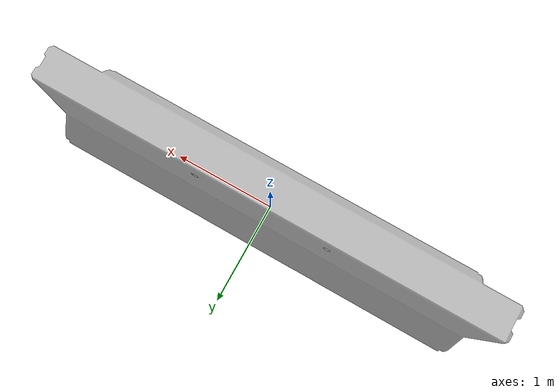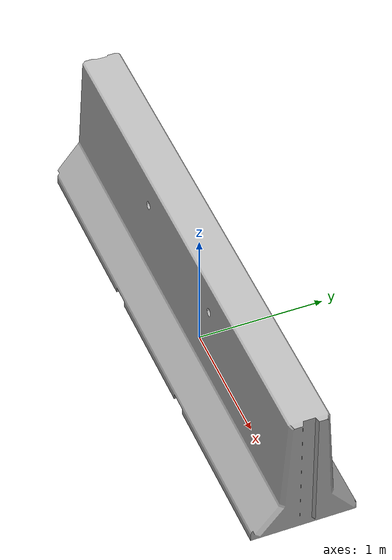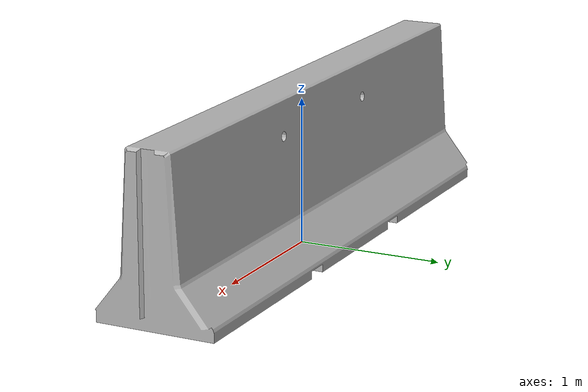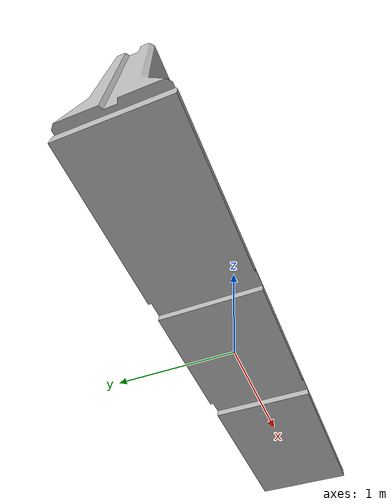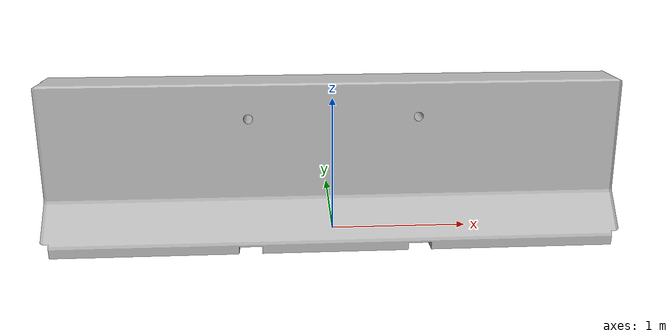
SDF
<?xml version="1.0" ?>
<sdf version="1.4">
  <model name="jersey_barrier">
    <link name="link">
      <inertial>
        <pose>0 0 0.2  0 0 0</pose>
        <!-- Volume ~ 4x1x0.5 = 2 m^3, 2000 kg/m^3 -->
        <mass>4000</mass>
        <!-- approximate as uniform box 4 x 0.5 x 1 m -->
        <inertia>
          <ixx>416.67</ixx>
          <ixy>0.0000</ixy><iyy>5666.7</iyy>
          <ixz>0.0000</ixz><iyz>0.0000</iyz><izz>5416.7</izz>
        </inertia>
      </inertial>
      <visual name="visual">
        <geometry>
          <mesh>
            <uri>model://jersey_barrier/meshes/jersey_barrier.dae</uri>
          </mesh>
        </geometry>
      </visual>

      <collision name="upright">
        <pose>0 0 0.5715 0 0 0</pose>
        <geometry>
          <box>
            <size>4.06542 0.3063 1.143</size>
          </box>
        </geometry>
      </collision>

      <collision name="base">
        <pose>0 0 0.032258 0 0 0</pose>
        <geometry>
          <box>
            <size>4.06542 0.8107 0.064516</size>
          </box>
        </geometry>
      </collision>

      <collision name="base2">
        <pose>0 0 0.1 0 0 0</pose>
        <geometry>
          <box>
            <size>4.06542 0.65 0.1</size>
          </box>
        </geometry>
      </collision>

      <collision name="base3">
        <pose>0 0 0.2 0 0 0</pose>
        <geometry>
          <box>
            <size>4.06542 0.5 0.1</size>
          </box>
        </geometry>
      </collision>

      <collision name="left-angle">
        <pose>0 -0.224 0.2401 0.9 0 0</pose>
        <geometry>
          <box>
            <size>4.06542 0.5 0.064516</size>
          </box>
        </geometry>
      </collision>

      <collision name="right-angle">
        <pose>0 0.224 0.2401 -0.9 0 0</pose>
        <geometry>
          <box>
            <size>4.06542 0.5 0.064516</size>
          </box>
        </geometry>
      </collision>

    </link>
  </model>
</sdf>
